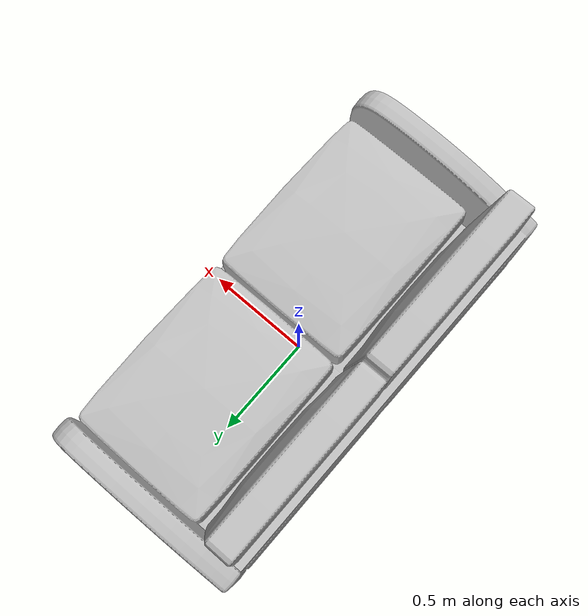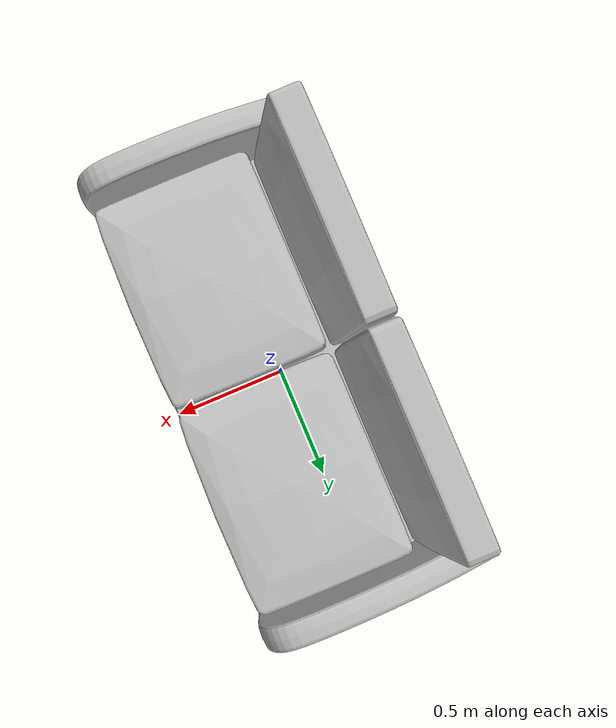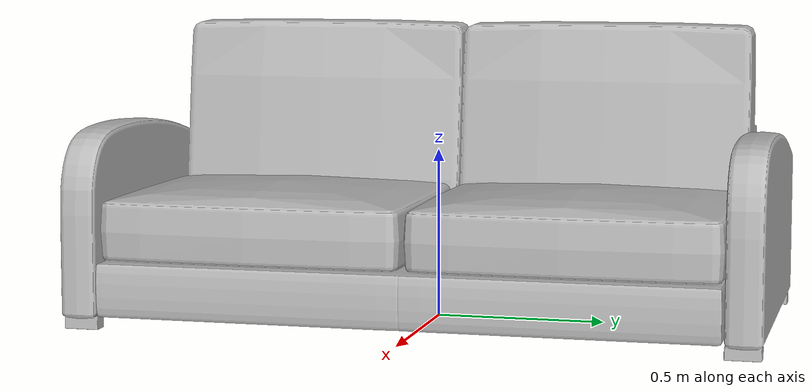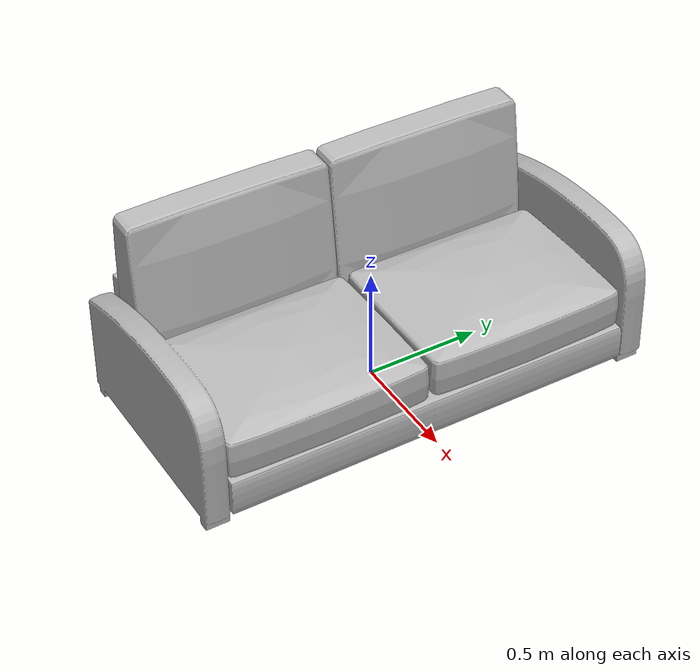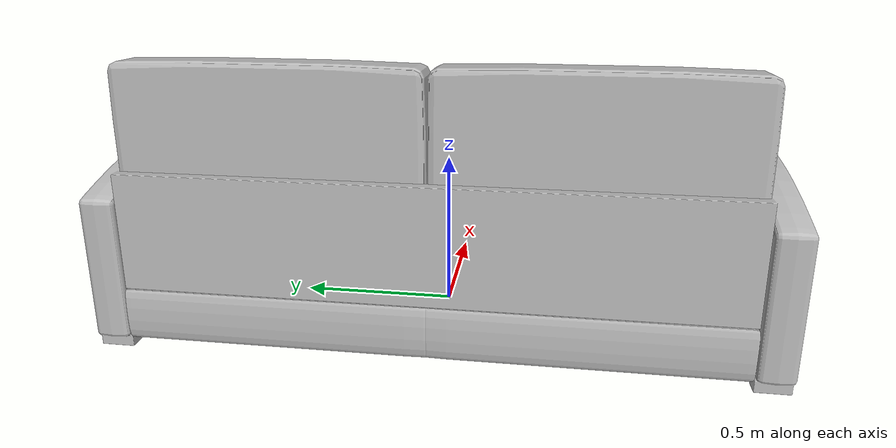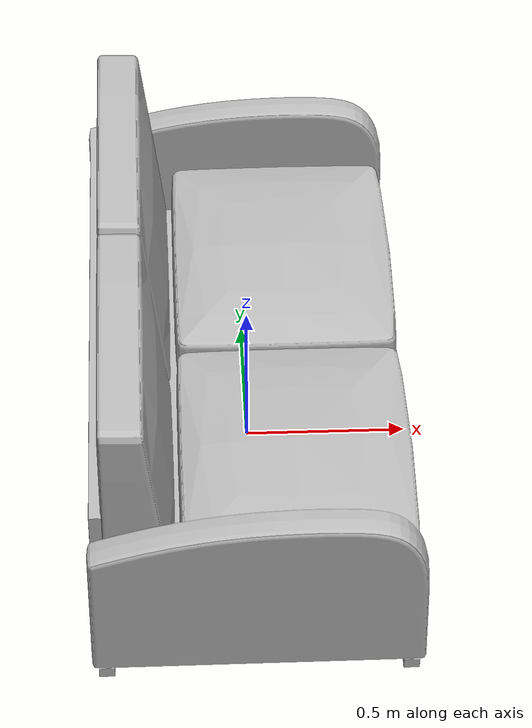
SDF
<?xml version='1.0'?>
<sdf version='1.4'>
  <model name='350'>
    <pose>0 0 0 0 0 0</pose>
    <static>true</static>
    <link name='link'>
      <collision name='collision'>
        <pose>0 0 0 0 0 0</pose>
        <geometry>
          <box>
            <size>0.98 2.02 2</size>
          </box>
        </geometry>
      </collision>
      <visual name='visual'>
        <pose>0 0 0 0 0 0</pose>
        <geometry>
          <mesh><uri>model://350/350.dae</uri></mesh>
        </geometry>
      </visual>
    </link>
  </model>
</sdf>
